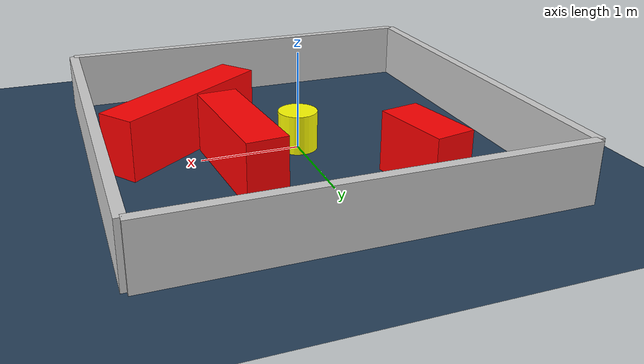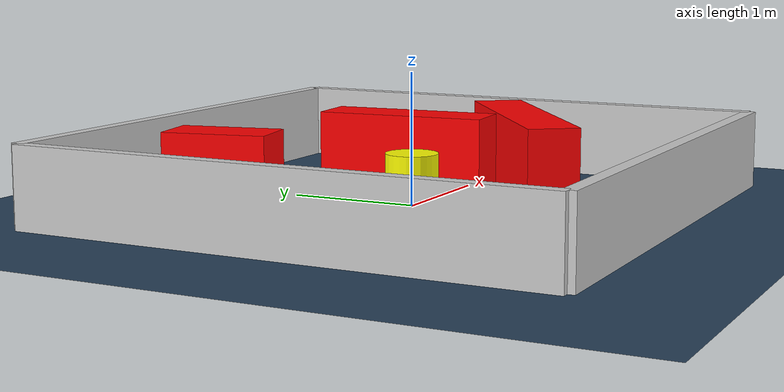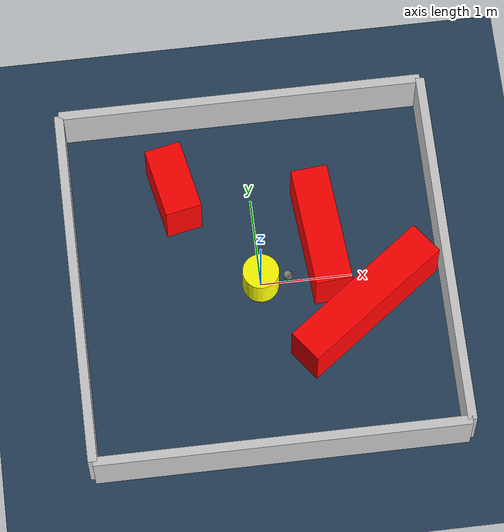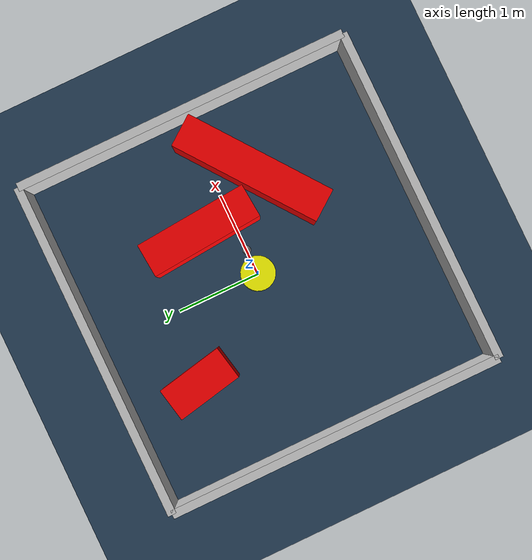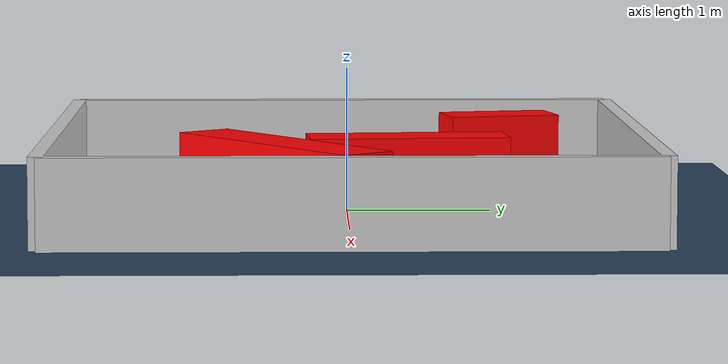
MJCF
<?xml version="1.0" ?>
<mujoco model="generated_environment">
  <option timestep="0.01" integrator="RK4" cone="elliptic"/>
  <default>
    <geom density="1"/>
  </default>
  <asset>
    <texture builtin="gradient" height="3072" rgb1="0.3 0.5 0.7" rgb2="0 0 0" type="skybox" width="512"/>
    <texture builtin="checker" height="300" mark="edge" markrgb="0.8 0.8 0.8" name="groundplane" rgb1="0.2 0.3 0.4" rgb2="0.1 0.2 0.3" type="2d" width="300"/>
    <material name="groundplane" reflectance="0.2" texrepeat="5 5" texture="groundplane" texuniform="true"/>
    <material name="robot" rgba="0.0 1.0 0.0 1"/>
  </asset>
  <worldbody>
    <light dir="0 0 -1" directional="true" pos="0 0 1.5"/>
    <geom condim="4" friction="1.0 0.005 0.001" material="groundplane" name="floor" size="0 0 0.05" type="plane"/>
    <body name="walls">
      <geom name="wall_1" condim="4" pos="-2.0 0.0 0.3" rgba="0.800000011920929 0.800000011920929 0.800000011920929 1.0" size="0.05 2.0 0.3" type="box"/>
      <geom name="wall_2" condim="4" pos="2.0 0.0 0.3" rgba="0.800000011920929 0.800000011920929 0.800000011920929 1.0" size="0.05 2.0 0.3" type="box"/>
      <geom name="wall_3" condim="4" pos="0.0 -2.0 0.3" rgba="0.800000011920929 0.800000011920929 0.800000011920929 1.0" size="2.0 0.05 0.3" type="box"/>
      <geom name="wall_4" condim="4" pos="0.0 2.0 0.3" rgba="0.800000011920929 0.800000011920929 0.800000011920929 1.0" size="2.0 0.05 0.3" type="box"/>
    </body>
    <body name="robot">
      <joint name="joint_x" type="slide" pos="0 0 0" axis="1 0 0"/>
      <joint name="joint_y" type="slide" pos="0 0 0" axis="0 1 0"/>
      <geom name="robot" type="sphere" pos="0.3 0.0 0.2" size="0.05" mass="5." friction="1.0 0.005 0.0001" condim="4" rgba="0.5 0.5 0.5 1.0"/>
      <site name="sensor_ball"/>
    </body>
    <body name="obstacle_movable_1">
      <geom name="obstacle_movable_1" condim="4" pos="0.0 0.0 0.2" euler="0 0 0.0" friction="1.0 0.005 0.001" rgba="1.0 1.0 0.0 1.0" size="0.2 0.2 0.0" type="cylinder" mass="0.1"/>
      <joint type="free"/>
    </body>
    <body name="obstacle_2_static">
      <geom name="obstacle_2_static" condim="4" pos="0.7039697605534458 0.3930048293062731 0.3" euler="0 0 94.77731956237857" friction="1.0 0.005 0.001" rgba="1 0 0 1" size="0.6701248194115775 0.2 0.3" type="box"/>
    </body>
    <body name="obstacle_3_static">
      <geom name="obstacle_3_static" condim="4" pos="1.0801866671061544 -0.44390299438271974 0.3" euler="0 0 36.83269785940655" friction="1.0 0.005 0.001" rgba="1 0 0 1" size="0.9079637995166061 0.2 0.3" type="box"/>
    </body>
    <body name="obstacle_4_static">
      <geom name="obstacle_4_static" condim="4" pos="-0.8315878625666078 1.1134301340728932 0.3" euler="0 0 281.40321819010774" friction="1.0 0.005 0.001" rgba="1 0 0 1" size="0.394245729247126 0.2 0.3" type="box"/>
    </body>
  </worldbody>
  <actuator>
    <motor name="actuator_x" joint="joint_x" gear="1" ctrlrange="-1 1"/>
    <motor name="actuator_y" joint="joint_y" gear="1" ctrlrange="-1 1"/>
  </actuator>
</mujoco>
